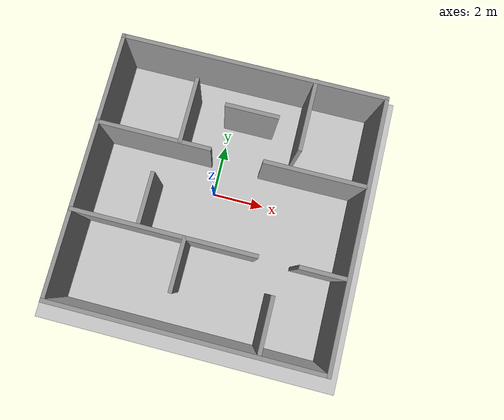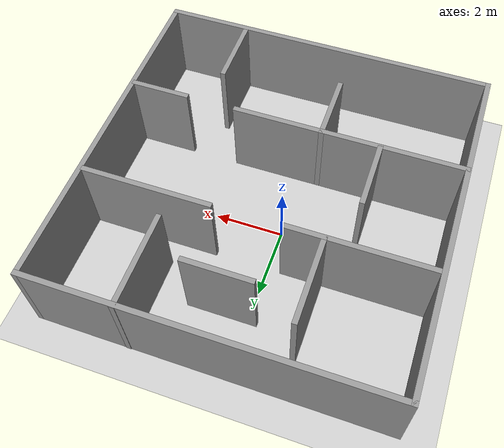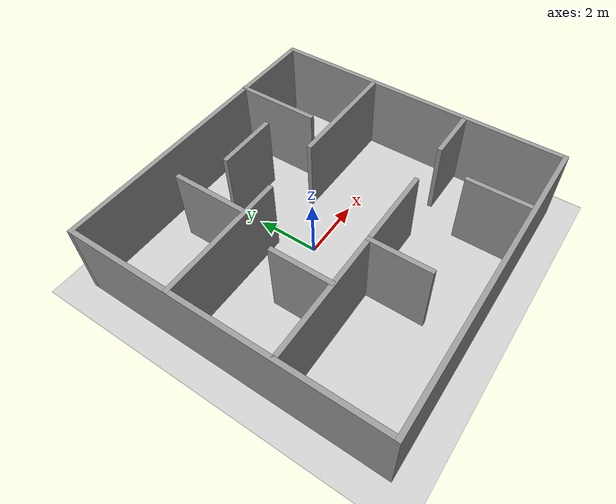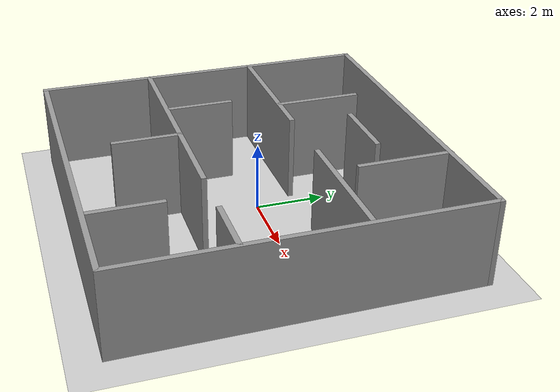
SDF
<sdf version="1.7">
 <world name="default">
  <light name="sun" type="directional">
   <pose>0 0 10 0 -0 0</pose>
   <diffuse>0.8 0.8 0.8 1</diffuse>
   <specular>0.2 0.2 0.2 1</specular>
   <attenuation>
    <range>1000</range>
    <constant>0.9</constant>
    <linear>0.01</linear>
    <quadratic>0.001</quadratic>
   </attenuation>
   <direction>-0.5 0.1 -0.9</direction>
   <spot><inner_angle>0</inner_angle><outer_angle>0</outer_angle><falloff>0</falloff></spot>
  </light>
  <model name="ground_plane">
   <static>1</static>
   <link name="link">
    <collision name="collision">
     <geometry><plane><normal>0 0 1</normal><size>100 100</size></plane></geometry>
     <surface>
      <contact><collide_bitmask>65535</collide_bitmask></contact>
      <friction><ode><mu>100</mu><mu2>50</mu2></ode></friction>
     </surface>
    </collision>
    <visual name="visual">
     <cast_shadows>0</cast_shadows>
     <geometry><plane><normal>0 0 1</normal><size>100 100</size></plane></geometry>
     <material>
      <script><uri>file://media/materials/scripts/gazebo.material</uri><name>Gazebo/Grey</name></script>
     </material>
    </visual>
   </link>
  </model>
  <gravity>0 0 -9.8</gravity>
  <magnetic_field>6e-06 2.3e-05 -4.2e-05</magnetic_field>
  <atmosphere type="adiabatic"/>
  <physics type="ode">
   <max_step_size>0.001</max_step_size>
   <real_time_factor>1</real_time_factor>
   <real_time_update_rate>1000</real_time_update_rate>
  </physics>
  <scene><ambient>0.4 0.4 0.4 1</ambient><background>0.7 0.7 0.7 1</background><shadows>1</shadows></scene>
  <spherical_coordinates>
   <surface_model>EARTH_WGS84</surface_model>
   <latitude_deg>0</latitude_deg>
   <longitude_deg>0</longitude_deg>
   <elevation>0</elevation>
   <heading_deg>0</heading_deg>
  </spherical_coordinates>
  <model name="test01">
   <pose>0.388703 -0.400504 0 0 -0 0</pose>
   <link name="Wall_0">
    <collision name="Wall_0_Collision">
     <geometry><box><size>10 0.15 2.5</size></box></geometry>
     <pose>0 0 1.25 0 -0 0</pose>
    </collision>
    <visual name="Wall_0_Visual">
     <pose>0 0 1.25 0 -0 0</pose>
     <geometry><box><size>10 0.15 2.5</size></box></geometry>
     <material>
      <script><uri>file://media/materials/scripts/gazebo.material</uri><name>Gazebo/Grey</name></script>
      <ambient>1 1 1 1</ambient>
     </material>
     <meta><layer>0</layer></meta>
    </visual>
    <pose>0 -4.93113 0 0 -0 0</pose>
   </link>
   <link name="Wall_1">
    <collision name="Wall_1_Collision">
     <geometry><box><size>10 0.15 2.5</size></box></geometry>
     <pose>0 0 1.25 0 -0 0</pose>
    </collision>
    <visual name="Wall_1_Visual">
     <pose>0 0 1.25 0 -0 0</pose>
     <geometry><box><size>10 0.15 2.5</size></box></geometry>
     <material>
      <script><uri>file://media/materials/scripts/gazebo.material</uri><name>Gazebo/Grey</name></script>
      <ambient>1 1 1 1</ambient>
     </material>
     <meta><layer>0</layer></meta>
    </visual>
    <pose>4.925 -0.006128 0 0 -0 1.5708</pose>
   </link>
   <link name="Wall_11">
    <collision name="Wall_11_Collision">
     <geometry><box><size>2.5 0.15 2.5</size></box></geometry>
     <pose>0 0 1.25 0 -0 0</pose>
    </collision>
    <visual name="Wall_11_Visual">
     <pose>0 0 1.25 0 -0 0</pose>
     <geometry><box><size>2.5 0.15 2.5</size></box></geometry>
     <material>
      <script><uri>file://media/materials/scripts/gazebo.material</uri><name>Gazebo/Grey</name></script>
      <ambient>1 1 1 1</ambient>
     </material>
     <meta><layer>0</layer></meta>
    </visual>
    <pose>-1.88548 2.7602 0 0 -0 1.5708</pose>
   </link>
   <link name="Wall_14">
    <collision name="Wall_14_Collision">
     <geometry><box><size>2 0.15 2.5</size></box></geometry>
     <pose>0 0 1.25 0 -0 0</pose>
    </collision>
    <visual name="Wall_14_Visual">
     <pose>0 0 1.25 0 -0 0</pose>
     <geometry><box><size>2 0.15 2.5</size></box></geometry>
     <material>
      <script><uri>file://media/materials/scripts/gazebo.material</uri><name>Gazebo/Grey</name></script>
      <ambient>1 1 1 1</ambient>
     </material>
     <meta><layer>0</layer></meta>
    </visual>
    <pose>0.332265 3.27337 0 0 -0 0</pose>
   </link>
   <link name="Wall_16">
    <collision name="Wall_16_Collision">
     <geometry><box><size>6.75 0.15 2.5</size></box></geometry>
     <pose>0 0 1.25 0 -0 0</pose>
    </collision>
    <visual name="Wall_16_Visual">
     <pose>0 0 1.25 0 -0 0</pose>
     <geometry><box><size>6.75 0.15 2.5</size></box></geometry>
     <material>
      <script><uri>file://media/materials/scripts/gazebo.material</uri><name>Gazebo/Grey</name></script>
      <ambient>1 1 1 1</ambient>
     </material>
     <meta><layer>0</layer></meta>
    </visual>
    <pose>-1.59681 -1.7151 0 0 -0 0</pose>
   </link>
   <link name="Wall_18">
    <collision name="Wall_18_Collision">
     <geometry><box><size>1.75 0.15 2.5</size></box></geometry>
     <pose>0 0 1.25 0 -0 0</pose>
    </collision>
    <visual name="Wall_18_Visual">
     <pose>0 0 1.25 0 -0 0</pose>
     <geometry><box><size>1.75 0.15 2.5</size></box></geometry>
     <material>
      <script><uri>file://media/materials/scripts/gazebo.material</uri><name>Gazebo/Grey</name></script>
      <ambient>1 1 1 1</ambient>
     </material>
     <meta><layer>0</layer></meta>
    </visual>
    <pose>4.05508 -1.7151 0 0 -0 0</pose>
   </link>
   <link name="Wall_2">
    <collision name="Wall_2_Collision">
     <geometry><box><size>10 0.15 2.5</size></box></geometry>
     <pose>0 0 1.25 0 -0 0</pose>
    </collision>
    <visual name="Wall_2_Visual">
     <pose>0 0 1.25 0 -0 0</pose>
     <geometry><box><size>10 0.15 2.5</size></box></geometry>
     <material>
      <script><uri>file://media/materials/scripts/gazebo.material</uri><name>Gazebo/Grey</name></script>
      <ambient>1 1 1 1</ambient>
     </material>
     <meta><layer>0</layer></meta>
    </visual>
    <pose>0 4.91887 0 0 -0 3.14159</pose>
   </link>
   <link name="Wall_20">
    <collision name="Wall_20_Collision">
     <geometry><box><size>2 0.15 2.5</size></box></geometry>
     <pose>0 0 1.25 0 -0 0</pose>
    </collision>
    <visual name="Wall_20_Visual">
     <pose>0 0 1.25 0 -0 0</pose>
     <geometry><box><size>2 0.15 2.5</size></box></geometry>
     <material>
      <script><uri>file://media/materials/scripts/gazebo.material</uri><name>Gazebo/Grey</name></script>
      <ambient>1 1 1 1</ambient>
     </material>
     <meta><layer>0</layer></meta>
    </visual>
    <pose>-0.836075 -2.6401 0 0 -0 -1.5708</pose>
   </link>
   <link name="Wall_22">
    <collision name="Wall_22_Collision">
     <geometry><box><size>2 0.15 2.5</size></box></geometry>
     <pose>0 0 1.25 0 -0 0</pose>
    </collision>
    <visual name="Wall_22_Visual">
     <pose>0 0 1.25 0 -0 0</pose>
     <geometry><box><size>2 0.15 2.5</size></box></geometry>
     <material>
      <script><uri>file://media/materials/scripts/gazebo.material</uri><name>Gazebo/Grey</name></script>
      <ambient>1 1 1 1</ambient>
     </material>
     <meta><layer>0</layer></meta>
    </visual>
    <pose>2.55548 -3.8568 0 0 -0 -1.5708</pose>
   </link>
   <link name="Wall_24">
    <collision name="Wall_24_Collision">
     <geometry><box><size>2 0.15 2.5</size></box></geometry>
     <pose>0 0 1.25 0 -0 0</pose>
    </collision>
    <visual name="Wall_24_Visual">
     <pose>0 0 1.25 0 -0 0</pose>
     <geometry><box><size>2 0.15 2.5</size></box></geometry>
     <material>
      <script><uri>file://media/materials/scripts/gazebo.material</uri><name>Gazebo/Grey</name></script>
      <ambient>1 1 1 1</ambient>
     </material>
     <meta><layer>0</layer></meta>
    </visual>
    <pose>-2.50904 -0.744469 0 0 -0 1.5708</pose>
   </link>
   <link name="Wall_3">
    <collision name="Wall_3_Collision">
     <geometry><box><size>10 0.15 2.5</size></box></geometry>
     <pose>0 0 1.25 0 -0 0</pose>
    </collision>
    <visual name="Wall_3_Visual">
     <pose>0 0 1.25 0 -0 0</pose>
     <geometry><box><size>10 0.15 2.5</size></box></geometry>
     <material>
      <script><uri>file://media/materials/scripts/gazebo.material</uri><name>Gazebo/Grey</name></script>
      <ambient>1 1 1 1</ambient>
     </material>
     <meta><layer>0</layer></meta>
    </visual>
    <pose>-4.925 -0.006128 0 0 -0 -1.5708</pose>
   </link>
   <link name="Wall_5">
    <collision name="Wall_5_Collision">
     <geometry><box><size>4.25 0.15 2.5</size></box></geometry>
     <pose>0 0 1.25 0 -0 0</pose>
    </collision>
    <visual name="Wall_5_Visual">
     <pose>0 0 1.25 0 -0 0</pose>
     <geometry><box><size>4.25 0.15 2.5</size></box></geometry>
     <material>
      <script><uri>file://media/materials/scripts/gazebo.material</uri><name>Gazebo/Grey</name></script>
      <ambient>1 1 1 1</ambient>
     </material>
     <meta><layer>0</layer></meta>
    </visual>
    <pose>-2.86202 1.53958 0 0 -0 0</pose>
   </link>
   <link name="Wall_7">
    <collision name="Wall_7_Collision">
     <geometry><box><size>3.75 0.15 2.5</size></box></geometry>
     <pose>0 0 1.25 0 -0 0</pose>
    </collision>
    <visual name="Wall_7_Visual">
     <pose>0 0 1.25 0 -0 0</pose>
     <geometry><box><size>3.75 0.15 2.5</size></box></geometry>
     <material>
      <script><uri>file://media/materials/scripts/gazebo.material</uri><name>Gazebo/Grey</name></script>
      <ambient>1 1 1 1</ambient>
     </material>
     <meta><layer>0</layer></meta>
    </visual>
    <pose>3.01711 1.56999 0 0 -0 0</pose>
   </link>
   <link name="Wall_9">
    <collision name="Wall_9_Collision">
     <geometry><box><size>2.75 0.15 2.5</size></box></geometry>
     <pose>0 0 1.25 0 -0 0</pose>
    </collision>
    <visual name="Wall_9_Visual">
     <pose>0 0 1.25 0 -0 0</pose>
     <geometry><box><size>2.75 0.15 2.5</size></box></geometry>
     <material>
      <script><uri>file://media/materials/scripts/gazebo.material</uri><name>Gazebo/Grey</name></script>
      <ambient>1 1 1 1</ambient>
     </material>
     <meta><layer>0</layer></meta>
    </visual>
    <pose>2.31214 3.63113 0 0 -0 -1.5708</pose>
   </link>
   <static>1</static>
  </model>
 </world>
</sdf>
